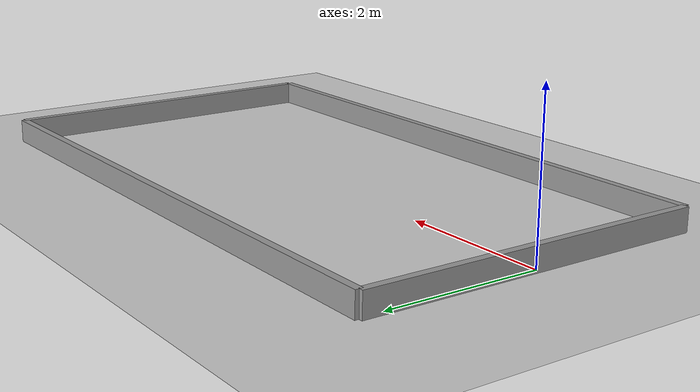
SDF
<sdf version="1.4">
 <world name="arena">
  <include><uri>model://sun</uri></include>
  <include><uri>model://ground_plane</uri></include>
  <include><uri>model://arena_frame_ucf</uri></include>
  <physics type="ode">
   <max_step_size>0.01</max_step_size>
   <real_time_factor>1</real_time_factor>
   <real_time_update_rate>100</real_time_update_rate>
   <gravity>0 0 -9.81</gravity>
  </physics>
 </world>
</sdf>

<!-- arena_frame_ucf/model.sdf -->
<sdf version='1.7'>
  <model name='arena_frame'>
    <pose>0 0 0 0 -0 0</pose>
      <link name='left_wall'>
        <collision name='left_wall_Collision'>
          <geometry>
            <box>
              <size>0.1 4.57 0.6</size>
            </box>
          </geometry>
          <pose>0 0 0 0 -0 0</pose>
          <max_contacts>10</max_contacts>
          <surface>
            <contact>
              <ode/>
            </contact>
            <bounce/>
            <friction>
              <torsional>
                <ode/>
              </torsional>
              <ode/>
            </friction>
          </surface>
        </collision>
        <visual name='left_wall_Visual'>
          <pose>0 0 0 0 -0 0</pose>
          <geometry>
            <box>
              <size>0.1 4.57 0.6</size>
            </box>
          </geometry>
          <material>
            <script>
              <uri>file://media/materials/scripts/gazebo.material</uri>
              <name>Gazebo/Grey</name>
            </script>
            <ambient>1 1 1 1</ambient>
          </material>
          <meta>
            <layer>0</layer>
          </meta>
        </visual>
        <pose>0 0 0 0 -0 0</pose>
        <self_collide>0</self_collide>
        <enable_wind>0</enable_wind>
        <kinematic>0</kinematic>
      </link>
      <link name='right_wall'>
        <collision name='right_wall_Collision'>
          <geometry>
            <box>
              <size>0.1 4.57 0.6</size>
            </box>
          </geometry>
          <max_contacts>10</max_contacts>
          <surface>
            <contact>
              <ode/>
            </contact>
            <bounce/>
            <friction>
              <torsional>
                <ode/>
              </torsional>
              <ode/>
            </friction>
          </surface>
        </collision>
        <visual name='right_wall_Visual'>
          <geometry>
            <box>
              <size>0.1 4.57 0.6</size>
            </box>
          </geometry>
          <material>
            <script>
              <uri>file://media/materials/scripts/gazebo.material</uri>
              <name>Gazebo/Grey</name>
            </script>
            <ambient>1 1 1 1</ambient>
          </material>
          <meta>
            <layer>0</layer>
          </meta>
        </visual>
        <pose>8.14 0 0 0 -0 0</pose>
        <self_collide>0</self_collide>
        <enable_wind>0</enable_wind>
        <kinematic>0</kinematic>
      </link>
      <link name='top_wall'>
        <collision name='top_wall_Collision'>
          <geometry>
            <box>
              <size>8.14 0.1 0.6</size>
            </box>
          </geometry>
          <max_contacts>10</max_contacts>
          <surface>
            <contact>
              <ode/>
            </contact>
            <bounce/>
            <friction>
              <torsional>
                <ode/>
              </torsional>
              <ode/>
            </friction>
          </surface>
        </collision>
        <visual name='top_wall_Visual'>
          <geometry>
            <box>
              <size>8.14 0.1 0.6</size>
            </box>
          </geometry>
          <material>
            <script>
              <uri>file://media/materials/scripts/gazebo.material</uri>
              <name>Gazebo/Grey</name>
            </script>
            <ambient>1 1 1 1</ambient>
          </material>
          <meta>
            <layer>0</layer>
          </meta>
        </visual>
        <pose>4.07 2.285 0 0 -0 0</pose>
        <self_collide>0</self_collide>
        <enable_wind>0</enable_wind>
        <kinematic>0</kinematic>
      </link>
      <link name='bottom_wall'>
        <collision name='bottom_wall_Collision'>
          <geometry>
            <box>
              <size>8.14 0.1 0.6</size>
            </box>
          </geometry>
          <max_contacts>10</max_contacts>
          <surface>
            <contact>
              <ode/>
            </contact>
            <bounce/>
            <friction>
              <torsional>
                <ode/>
              </torsional>
              <ode/>
            </friction>
          </surface>
        </collision>
        <visual name='bottom_wall_Visual'>
          <geometry>
            <box>
              <size>8.14 0.1 0.6</size>
            </box>
          </geometry>
          <material>
            <script>
              <uri>file://media/materials/scripts/gazebo.material</uri>
              <name>Gazebo/Grey</name>
            </script>
            <ambient>1 1 1 1</ambient>
          </material>
          <meta>
            <layer>0</layer>
          </meta>
        </visual>
        <pose>4.07 -2.285 0 0 -0 0</pose>
        <self_collide>0</self_collide>
        <enable_wind>0</enable_wind>
        <kinematic>0</kinematic>
      </link>
    <static>1</static>
  </model>
</sdf>
